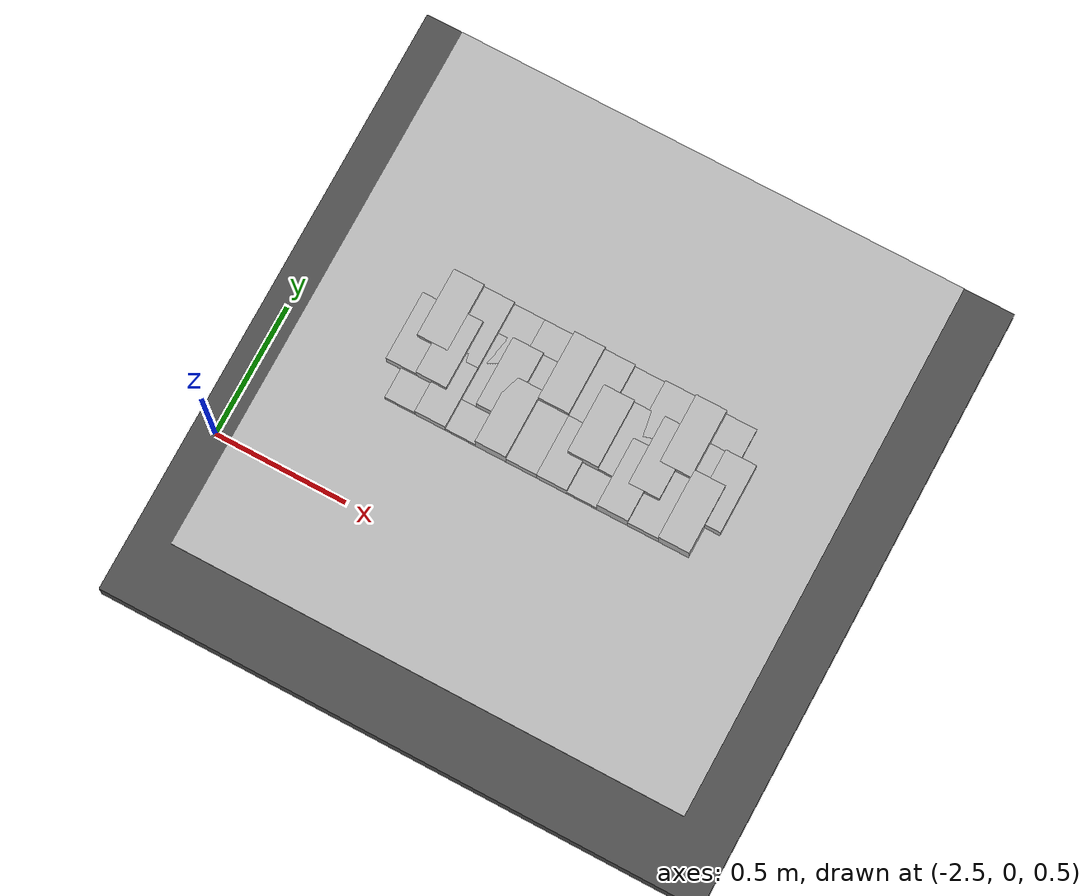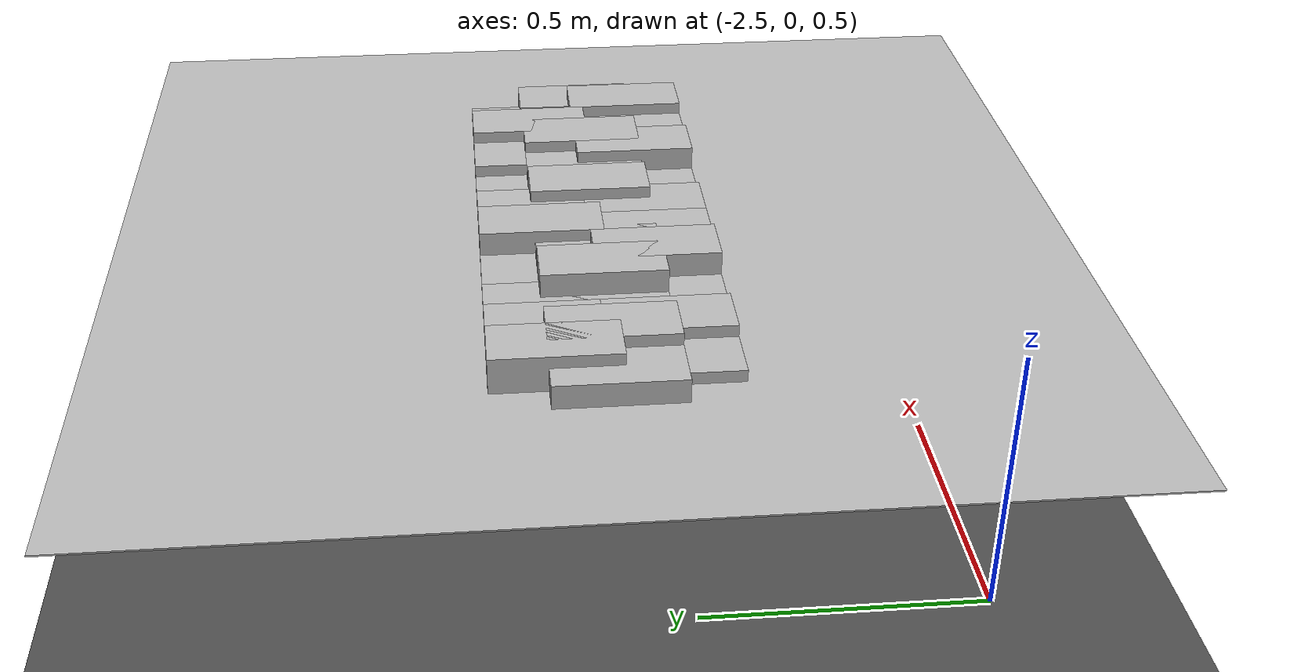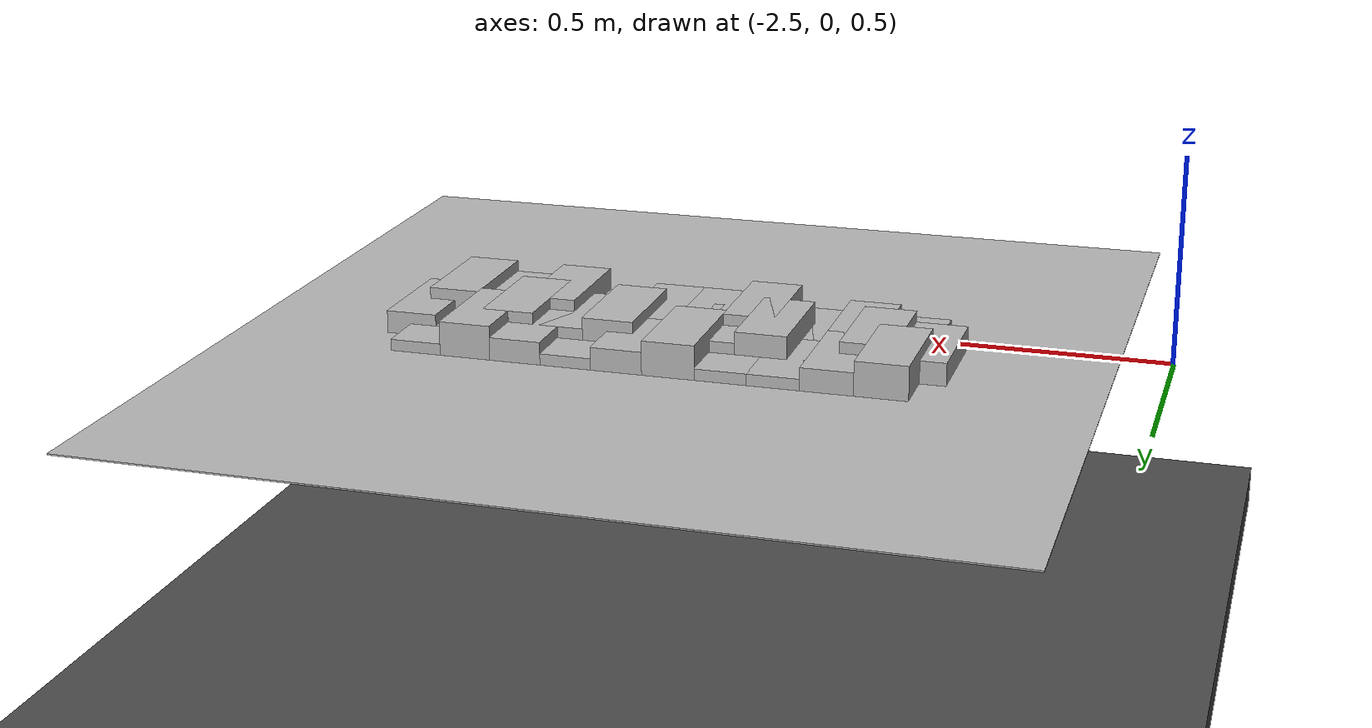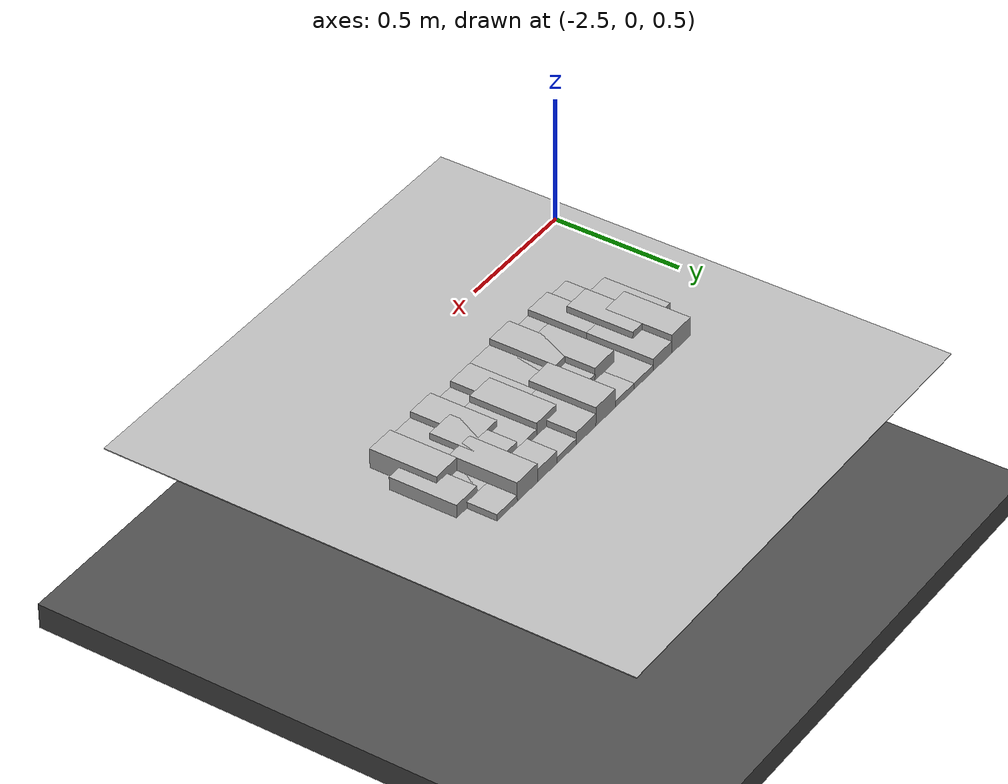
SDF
<sdf version="1.6">
 <world name="default">
  <model name="ground_plane">
   <static>1</static>
   <link name="link">
    <collision name="collision">
     <geometry><plane><normal>0 0 1</normal><size>100 100</size></plane></geometry>
     <surface><friction><ode><mu>100</mu><mu2>50</mu2></ode></friction></surface>
    </collision>
    <visual name="visual">
     <cast_shadows>0</cast_shadows>
     <geometry><plane><normal>0 0 1</normal><size>100 100</size></plane></geometry>
     <material>
      <script><uri>file://media/materials/scripts/gazebo.material</uri><name>Gazebo/Grey</name></script>
     </material>
    </visual>
   </link>
  </model>
  <model name="frc2016_roughterrain_0">
   <link name="link_clone_17">
    <pose>-1.35942 0.562903 -0.073164 0 -0 0</pose>
    <inertial>
     <inertia><ixx>nan</ixx><ixy>0</ixy><ixz>0</ixz><iyy>nan</iyy><iyz>0</iyz><izz>nan</izz></inertia>
     <mass>0</mass>
    </inertial>
    <visual name="row1_block4_sm">
     <pose>0.17145 0.1143 0.09698 0 -0 0</pose>
     <geometry><box><size>0.115452 0.257474 0.0254</size></box></geometry>
     <material><shader type="pixel"/></material>
    </visual>
    <visual name="row1_block3_md">
     <pose>0.28575 0.1143 0.10968 0 -0 0</pose>
     <geometry><box><size>0.115452 0.257474 0.0508</size></box></geometry>
     <material><shader type="pixel"/></material>
    </visual>
    <visual name="platform">
     <pose>0 0 0.08269 0 -0 0</pose>
     <geometry><box><size>1.91826 2.01688 0.003175</size></box></geometry>
     <material><shader type="pixel"/></material>
    </visual>
    <visual name="row1_block1_sm">
     <pose>0.51435 0.1143 0.09698 0 -0 0</pose>
     <geometry><box><size>0.115452 0.257474 0.0254</size></box></geometry>
     <material><shader type="pixel"/></material>
    </visual>
    <visual name="row1_block2_lg">
     <pose>0.40005 0.1143 0.12238 0 -0 0</pose>
     <geometry><box><size>0.115452 0.257474 0.0762</size></box></geometry>
     <material><shader type="pixel"/></material>
    </visual>
    <visual name="row1_block6_lg">
     <pose>-0.05715 0.1143 0.12238 0 -0 0</pose>
     <geometry><box><size>0.115452 0.257474 0.0762</size></box></geometry>
     <material><shader type="pixel"/></material>
    </visual>
    <visual name="row1_block5_md">
     <pose>0.05715 0.1143 0.10968 0 -0 0</pose>
     <geometry><box><size>0.115452 0.257474 0.0508</size></box></geometry>
     <material><shader type="pixel"/></material>
    </visual>
    <visual name="row1_block7_sm">
     <pose>-0.17145 0.1143 0.09698 0 -0 0</pose>
     <geometry><box><size>0.115452 0.257474 0.0254</size></box></geometry>
     <material><shader type="pixel"/></material>
    </visual>
    <visual name="row1_block8_sm">
     <pose>-0.28575 0.1143 0.09698 0 -0 0</pose>
     <geometry><box><size>0.115452 0.257474 0.0254</size></box></geometry>
     <material><shader type="pixel"/></material>
    </visual>
    <visual name="row1_block9_md">
     <pose>-0.40005 0.1143 0.10968 0 -0 0</pose>
     <geometry><box><size>0.115452 0.257474 0.0508</size></box></geometry>
     <material><shader type="pixel"/></material>
    </visual>
    <visual name="row1_block10_lg">
     <pose>-0.51435 0.1143 0.12238 0 -0 0</pose>
     <geometry><box><size>0.115452 0.257474 0.0762</size></box></geometry>
     <material><shader type="pixel"/></material>
    </visual>
    <visual name="row2_block1_md">
     <pose>0.5715 0 0.10968 0 -0 0</pose>
     <geometry><box><size>0.115452 0.257474 0.0508</size></box></geometry>
     <material><shader type="pixel"/></material>
    </visual>
    <visual name="row2_block2_sm">
     <pose>0.4572 0 0.09698 0 -0 0</pose>
     <geometry><box><size>0.115452 0.257474 0.0254</size></box></geometry>
     <material><shader type="pixel"/></material>
    </visual>
    <visual name="row2_block3_lg">
     <pose>0.3429 0 0.12238 0 -0 0</pose>
     <geometry><box><size>0.115452 0.257474 0.0762</size></box></geometry>
     <material><shader type="pixel"/></material>
    </visual>
    <visual name="row2_block4_md">
     <pose>0.2286 0 0.10968 0 -0 0</pose>
     <geometry><box><size>0.115452 0.257474 0.0508</size></box></geometry>
     <material><shader type="pixel"/></material>
    </visual>
    <visual name="row2_block5_lg">
     <pose>0.1143 0 0.12238 0 -0 0</pose>
     <geometry><box><size>0.115452 0.257474 0.0762</size></box></geometry>
     <material><shader type="pixel"/></material>
    </visual>
    <visual name="row2_block6_sm">
     <pose>0 0 0.09698 0 -0 0</pose>
     <geometry><box><size>0.115452 0.257474 0.0254</size></box></geometry>
     <material><shader type="pixel"/></material>
    </visual>
    <visual name="row2_block7_md">
     <pose>-0.1143 0 0.10968 0 -0 0</pose>
     <geometry><box><size>0.115452 0.257474 0.0508</size></box></geometry>
     <material><shader type="pixel"/></material>
    </visual>
    <visual name="row2_block8_lg">
     <pose>-0.2286 0 0.12238 0 -0 0</pose>
     <geometry><box><size>0.115452 0.257474 0.0762</size></box></geometry>
     <material><shader type="pixel"/></material>
    </visual>
    <visual name="row2_block9_sm">
     <pose>-0.3429 0 0.09698 0 -0 0</pose>
     <geometry><box><size>0.115452 0.257474 0.0254</size></box></geometry>
     <material><shader type="pixel"/></material>
    </visual>
    <visual name="row2_block10_lg">
     <pose>-0.4572 0 0.12238 0 -0 0</pose>
     <geometry><box><size>0.115452 0.257474 0.0762</size></box></geometry>
     <material><shader type="pixel"/></material>
    </visual>
    <visual name="row2_block11_md">
     <pose>-0.5715 0 0.10968 0 -0 0</pose>
     <geometry><box><size>0.115452 0.257474 0.0508</size></box></geometry>
     <material><shader type="pixel"/></material>
    </visual>
    <visual name="row3_block2_md">
     <pose>0.40005 -0.1143 0.10968 0 -0 0</pose>
     <geometry><box><size>0.115452 0.257474 0.0508</size></box></geometry>
     <material><shader type="pixel"/></material>
    </visual>
    <visual name="row3_block1_lg">
     <pose>0.51435 -0.1143 0.12238 0 -0 0</pose>
     <geometry><box><size>0.115452 0.257474 0.0762</size></box></geometry>
     <material><shader type="pixel"/></material>
    </visual>
    <visual name="row3_block3_lg">
     <pose>0.28575 -0.1143 0.12238 0 -0 0</pose>
     <geometry><box><size>0.115452 0.257474 0.0762</size></box></geometry>
     <material><shader type="pixel"/></material>
    </visual>
    <visual name="row3_block4_sm">
     <pose>0.17145 -0.1143 0.09698 0 -0 0</pose>
     <geometry><box><size>0.115452 0.257474 0.0254</size></box></geometry>
     <material><shader type="pixel"/></material>
    </visual>
    <visual name="row3_block5_md">
     <pose>0.05715 -0.1143 0.10968 0 -0 0</pose>
     <geometry><box><size>0.115452 0.257474 0.0508</size></box></geometry>
     <material><shader type="pixel"/></material>
    </visual>
    <visual name="row3_block6_md">
     <pose>-0.05715 -0.1143 0.10968 0 -0 0</pose>
     <geometry><box><size>0.115452 0.257474 0.0508</size></box></geometry>
     <material><shader type="pixel"/></material>
    </visual>
    <visual name="row3_block8_sm">
     <pose>-0.28575 -0.1143 0.09698 0 -0 0</pose>
     <geometry><box><size>0.115452 0.257474 0.0254</size></box></geometry>
     <material><shader type="pixel"/></material>
    </visual>
    <visual name="row3_block7_lg">
     <pose>-0.17145 -0.1143 0.12238 0 -0 0</pose>
     <geometry><box><size>0.115452 0.257474 0.0762</size></box></geometry>
     <material><shader type="pixel"/></material>
    </visual>
    <visual name="row3_block9_md">
     <pose>-0.40005 -0.1143 0.10968 0 -0 0</pose>
     <geometry><box><size>0.115452 0.257474 0.0508</size></box></geometry>
     <material><shader type="pixel"/></material>
    </visual>
    <visual name="row3_block10_sm">
     <pose>-0.51435 -0.1143 0.09698 0 -0 0</pose>
     <geometry><box><size>0.115452 0.257474 0.0254</size></box></geometry>
     <material><shader type="pixel"/></material>
    </visual>
    <collision name="row2_block5_lg_0">
     <pose>0.1143 0 0.12238 0 -0 0</pose>
     <geometry><box><size>0.115452 0.257474 0.0762</size></box></geometry>
     <surface>
      <friction>
       <ode><mu>1</mu><mu2>1</mu2><fdir1>0 0 0</fdir1><slip1>0</slip1><slip2>0</slip2></ode>
       <torsional>
        <coefficient>1</coefficient>
        <patch_radius>0</patch_radius>
        <surface_radius>0</surface_radius>
        <use_patch_radius>1</use_patch_radius>
        <ode><slip>0</slip></ode>
       </torsional>
      </friction>
      <bounce><restitution_coefficient>0</restitution_coefficient><threshold>1e+06</threshold></bounce>
      <contact>
       <collide_without_contact>0</collide_without_contact>
       <collide_without_contact_bitmask>1</collide_without_contact_bitmask>
       <collide_bitmask>1</collide_bitmask>
       <ode>
        <soft_cfm>0</soft_cfm>
        <soft_erp>0.2</soft_erp>
        <kp>1e+13</kp>
        <kd>1</kd>
        <max_vel>0.01</max_vel>
        <min_depth>0</min_depth>
       </ode>
       <bullet>
        <split_impulse>1</split_impulse>
        <split_impulse_penetration_threshold>-0.01</split_impulse_penetration_threshold>
        <soft_cfm>0</soft_cfm>
        <soft_erp>0.2</soft_erp>
        <kp>1e+13</kp>
        <kd>1</kd>
       </bullet>
      </contact>
     </surface>
    </collision>
    <collision name="row1_block5_md_0">
     <pose>0.05715 0.1143 0.10968 0 -0 0</pose>
     <geometry><box><size>0.115452 0.257474 0.0508</size></box></geometry>
     <surface>
      <friction>
       <ode><mu>1</mu><mu2>1</mu2><fdir1>0 0 0</fdir1><slip1>0</slip1><slip2>0</slip2></ode>
       <torsional>
        <coefficient>1</coefficient>
        <patch_radius>0</patch_radius>
        <surface_radius>0</surface_radius>
        <use_patch_radius>1</use_patch_radius>
        <ode><slip>0</slip></ode>
       </torsional>
      </friction>
      <bounce><restitution_coefficient>0</restitution_coefficient><threshold>1e+06</threshold></bounce>
      <contact>
       <collide_without_contact>0</collide_without_contact>
       <collide_without_contact_bitmask>1</collide_without_contact_bitmask>
       <collide_bitmask>1</collide_bitmask>
       <ode>
        <soft_cfm>0</soft_cfm>
        <soft_erp>0.2</soft_erp>
        <kp>1e+13</kp>
        <kd>1</kd>
        <max_vel>0.01</max_vel>
        <min_depth>0</min_depth>
       </ode>
       <bullet>
        <split_impulse>1</split_impulse>
        <split_impulse_penetration_threshold>-0.01</split_impulse_penetration_threshold>
        <soft_cfm>0</soft_cfm>
        <soft_erp>0.2</soft_erp>
        <kp>1e+13</kp>
        <kd>1</kd>
       </bullet>
      </contact>
     </surface>
    </collision>
    <collision name="platform_0">
     <pose>0 0 0.08269 0 -0 0</pose>
     <geometry><box><size>1.91826 2.01688 0.003175</size></box></geometry>
     <surface>
      <friction>
       <ode><mu>1</mu><mu2>1</mu2><fdir1>0 0 0</fdir1><slip1>0</slip1><slip2>0</slip2></ode>
       <torsional>
        <coefficient>1</coefficient>
        <patch_radius>0</patch_radius>
        <surface_radius>0</surface_radius>
        <use_patch_radius>1</use_patch_radius>
        <ode><slip>0</slip></ode>
       </torsional>
      </friction>
      <bounce><restitution_coefficient>0</restitution_coefficient><threshold>1e+06</threshold></bounce>
      <contact>
       <collide_without_contact>0</collide_without_contact>
       <collide_without_contact_bitmask>1</collide_without_contact_bitmask>
       <collide_bitmask>1</collide_bitmask>
       <ode>
        <soft_cfm>0</soft_cfm>
        <soft_erp>0.2</soft_erp>
        <kp>1e+13</kp>
        <kd>1</kd>
        <max_vel>0.01</max_vel>
        <min_depth>0</min_depth>
       </ode>
       <bullet>
        <split_impulse>1</split_impulse>
        <split_impulse_penetration_threshold>-0.01</split_impulse_penetration_threshold>
        <soft_cfm>0</soft_cfm>
        <soft_erp>0.2</soft_erp>
        <kp>1e+13</kp>
        <kd>1</kd>
       </bullet>
      </contact>
     </surface>
    </collision>
    <collision name="row1_block1_sm_0">
     <pose>0.51435 0.1143 0.09698 0 -0 0</pose>
     <geometry><box><size>0.115452 0.257474 0.0254</size></box></geometry>
     <surface>
      <friction>
       <ode><mu>1</mu><mu2>1</mu2><fdir1>0 0 0</fdir1><slip1>0</slip1><slip2>0</slip2></ode>
       <torsional>
        <coefficient>1</coefficient>
        <patch_radius>0</patch_radius>
        <surface_radius>0</surface_radius>
        <use_patch_radius>1</use_patch_radius>
        <ode><slip>0</slip></ode>
       </torsional>
      </friction>
      <bounce><restitution_coefficient>0</restitution_coefficient><threshold>1e+06</threshold></bounce>
      <contact>
       <collide_without_contact>0</collide_without_contact>
       <collide_without_contact_bitmask>1</collide_without_contact_bitmask>
       <collide_bitmask>1</collide_bitmask>
       <ode>
        <soft_cfm>0</soft_cfm>
        <soft_erp>0.2</soft_erp>
        <kp>1e+13</kp>
        <kd>1</kd>
        <max_vel>0.01</max_vel>
        <min_depth>0</min_depth>
       </ode>
       <bullet>
        <split_impulse>1</split_impulse>
        <split_impulse_penetration_threshold>-0.01</split_impulse_penetration_threshold>
        <soft_cfm>0</soft_cfm>
        <soft_erp>0.2</soft_erp>
        <kp>1e+13</kp>
        <kd>1</kd>
       </bullet>
      </contact>
     </surface>
    </collision>
    <collision name="row1_block3_md_0">
     <pose>0.28575 0.1143 0.10968 0 -0 0</pose>
     <geometry><box><size>0.115452 0.257474 0.0508</size></box></geometry>
     <surface>
      <friction>
       <ode><mu>1</mu><mu2>1</mu2><fdir1>0 0 0</fdir1><slip1>0</slip1><slip2>0</slip2></ode>
       <torsional>
        <coefficient>1</coefficient>
        <patch_radius>0</patch_radius>
        <surface_radius>0</surface_radius>
        <use_patch_radius>1</use_patch_radius>
        <ode><slip>0</slip></ode>
       </torsional>
      </friction>
      <bounce><restitution_coefficient>0</restitution_coefficient><threshold>1e+06</threshold></bounce>
      <contact>
       <collide_without_contact>0</collide_without_contact>
       <collide_without_contact_bitmask>1</collide_without_contact_bitmask>
       <collide_bitmask>1</collide_bitmask>
       <ode>
        <soft_cfm>0</soft_cfm>
        <soft_erp>0.2</soft_erp>
        <kp>1e+13</kp>
        <kd>1</kd>
        <max_vel>0.01</max_vel>
        <min_depth>0</min_depth>
       </ode>
       <bullet>
        <split_impulse>1</split_impulse>
        <split_impulse_penetration_threshold>-0.01</split_impulse_penetration_threshold>
        <soft_cfm>0</soft_cfm>
        <soft_erp>0.2</soft_erp>
        <kp>1e+13</kp>
        <kd>1</kd>
       </bullet>
      </contact>
     </surface>
    </collision>
    <collision name="row1_block4_sm_0">
     <pose>0.17145 0.1143 0.09698 0 -0 0</pose>
     <geometry><box><size>0.115452 0.257474 0.0254</size></box></geometry>
     <surface>
      <friction>
       <ode><mu>1</mu><mu2>1</mu2><fdir1>0 0 0</fdir1><slip1>0</slip1><slip2>0</slip2></ode>
       <torsional>
        <coefficient>1</coefficient>
        <patch_radius>0</patch_radius>
        <surface_radius>0</surface_radius>
        <use_patch_radius>1</use_patch_radius>
        <ode><slip>0</slip></ode>
       </torsional>
      </friction>
      <bounce><restitution_coefficient>0</restitution_coefficient><threshold>1e+06</threshold></bounce>
      <contact>
       <collide_without_contact>0</collide_without_contact>
       <collide_without_contact_bitmask>1</collide_without_contact_bitmask>
       <collide_bitmask>1</collide_bitmask>
       <ode>
        <soft_cfm>0</soft_cfm>
        <soft_erp>0.2</soft_erp>
        <kp>1e+13</kp>
        <kd>1</kd>
        <max_vel>0.01</max_vel>
        <min_depth>0</min_depth>
       </ode>
       <bullet>
        <split_impulse>1</split_impulse>
        <split_impulse_penetration_threshold>-0.01</split_impulse_penetration_threshold>
        <soft_cfm>0</soft_cfm>
        <soft_erp>0.2</soft_erp>
        <kp>1e+13</kp>
        <kd>1</kd>
       </bullet>
      </contact>
     </surface>
    </collision>
    <collision name="row1_block2_lg_0">
     <pose>0.40005 0.1143 0.12238 0 -0 0</pose>
     <geometry><box><size>0.115452 0.257474 0.0762</size></box></geometry>
     <surface>
      <friction>
       <ode><mu>1</mu><mu2>1</mu2><fdir1>0 0 0</fdir1><slip1>0</slip1><slip2>0</slip2></ode>
       <torsional>
        <coefficient>1</coefficient>
        <patch_radius>0</patch_radius>
        <surface_radius>0</surface_radius>
        <use_patch_radius>1</use_patch_radius>
        <ode><slip>0</slip></ode>
       </torsional>
      </friction>
      <bounce><restitution_coefficient>0</restitution_coefficient><threshold>1e+06</threshold></bounce>
      <contact>
       <collide_without_contact>0</collide_without_contact>
       <collide_without_contact_bitmask>1</collide_without_contact_bitmask>
       <collide_bitmask>1</collide_bitmask>
       <ode>
        <soft_cfm>0</soft_cfm>
        <soft_erp>0.2</soft_erp>
        <kp>1e+13</kp>
        <kd>1</kd>
        <max_vel>0.01</max_vel>
        <min_depth>0</min_depth>
       </ode>
       <bullet>
        <split_impulse>1</split_impulse>
        <split_impulse_penetration_threshold>-0.01</split_impulse_penetration_threshold>
        <soft_cfm>0</soft_cfm>
        <soft_erp>0.2</soft_erp>
        <kp>1e+13</kp>
        <kd>1</kd>
       </bullet>
      </contact>
     </surface>
    </collision>
    <collision name="row1_block6_lg_0">
     <pose>-0.05715 0.1143 0.12238 0 -0 0</pose>
     <geometry><box><size>0.115452 0.257474 0.0762</size></box></geometry>
     <surface>
      <friction>
       <ode><mu>1</mu><mu2>1</mu2><fdir1>0 0 0</fdir1><slip1>0</slip1><slip2>0</slip2></ode>
       <torsional>
        <coefficient>1</coefficient>
        <patch_radius>0</patch_radius>
        <surface_radius>0</surface_radius>
        <use_patch_radius>1</use_patch_radius>
        <ode><slip>0</slip></ode>
       </torsional>
      </friction>
      <bounce><restitution_coefficient>0</restitution_coefficient><threshold>1e+06</threshold></bounce>
      <contact>
       <collide_without_contact>0</collide_without_contact>
       <collide_without_contact_bitmask>1</collide_without_contact_bitmask>
       <collide_bitmask>1</collide_bitmask>
       <ode>
        <soft_cfm>0</soft_cfm>
        <soft_erp>0.2</soft_erp>
        <kp>1e+13</kp>
        <kd>1</kd>
        <max_vel>0.01</max_vel>
        <min_depth>0</min_depth>
       </ode>
       <bullet>
        <split_impulse>1</split_impulse>
        <split_impulse_penetration_threshold>-0.01</split_impulse_penetration_threshold>
        <soft_cfm>0</soft_cfm>
        <soft_erp>0.2</soft_erp>
        <kp>1e+13</kp>
        <kd>1</kd>
       </bullet>
      </contact>
     </surface>
    </collision>
    <collision name="row1_block7_sm_0">
     <pose>-0.17145 0.1143 0.09698 0 -0 0</pose>
     <geometry><box><size>0.115452 0.257474 0.0254</size></box></geometry>
     <surface>
      <friction>
       <ode><mu>1</mu><mu2>1</mu2><fdir1>0 0 0</fdir1><slip1>0</slip1><slip2>0</slip2></ode>
       <torsional>
        <coefficient>1</coefficient>
        <patch_radius>0</patch_radius>
        <surface_radius>0</surface_radius>
        <use_patch_radius>1</use_patch_radius>
        <ode><slip>0</slip></ode>
       </torsional>
      </friction>
      <bounce><restitution_coefficient>0</restitution_coefficient><threshold>1e+06</threshold></bounce>
      <contact>
       <collide_without_contact>0</collide_without_contact>
       <collide_without_contact_bitmask>1</collide_without_contact_bitmask>
       <collide_bitmask>1</collide_bitmask>
       <ode>
        <soft_cfm>0</soft_cfm>
        <soft_erp>0.2</soft_erp>
        <kp>1e+13</kp>
        <kd>1</kd>
        <max_vel>0.01</max_vel>
        <min_depth>0</min_depth>
       </ode>
       <bullet>
        <split_impulse>1</split_impulse>
        <split_impulse_penetration_threshold>-0.01</split_impulse_penetration_threshold>
        <soft_cfm>0</soft_cfm>
        <soft_erp>0.2</soft_erp>
        <kp>1e+13</kp>
        <kd>1</kd>
       </bullet>
      </contact>
     </surface>
    </collision>
    <collision name="row1_block8_sm_0">
     <pose>-0.28575 0.1143 0.09698 0 -0 0</pose>
     <geometry><box><size>0.115452 0.257474 0.0254</size></box></geometry>
     <surface>
      <friction>
       <ode><mu>1</mu><mu2>1</mu2><fdir1>0 0 0</fdir1><slip1>0</slip1><slip2>0</slip2></ode>
       <torsional>
        <coefficient>1</coefficient>
        <patch_radius>0</patch_radius>
        <surface_radius>0</surface_radius>
        <use_patch_radius>1</use_patch_radius>
        <ode><slip>0</slip></ode>
       </torsional>
      </friction>
      <bounce><restitution_coefficient>0</restitution_coefficient><threshold>1e+06</threshold></bounce>
      <contact>
       <collide_without_contact>0</collide_without_contact>
       <collide_without_contact_bitmask>1</collide_without_contact_bitmask>
       <collide_bitmask>1</collide_bitmask>
       <ode>
        <soft_cfm>0</soft_cfm>
        <soft_erp>0.2</soft_erp>
        <kp>1e+13</kp>
        <kd>1</kd>
        <max_vel>0.01</max_vel>
        <min_depth>0</min_depth>
       </ode>
       <bullet>
        <split_impulse>1</split_impulse>
        <split_impulse_penetration_threshold>-0.01</split_impulse_penetration_threshold>
        <soft_cfm>0</soft_cfm>
        <soft_erp>0.2</soft_erp>
        <kp>1e+13</kp>
        <kd>1</kd>
       </bullet>
      </contact>
     </surface>
    </collision>
    <collision name="row1_block10_lg_0">
     <pose>-0.51435 0.1143 0.12238 0 -0 0</pose>
     <geometry><box><size>0.115452 0.257474 0.0762</size></box></geometry>
     <surface>
      <friction>
       <ode><mu>1</mu><mu2>1</mu2><fdir1>0 0 0</fdir1><slip1>0</slip1><slip2>0</slip2></ode>
       <torsional>
        <coefficient>1</coefficient>
        <patch_radius>0</patch_radius>
        <surface_radius>0</surface_radius>
        <use_patch_radius>1</use_patch_radius>
        <ode><slip>0</slip></ode>
       </torsional>
      </friction>
      <bounce><restitution_coefficient>0</restitution_coefficient><threshold>1e+06</threshold></bounce>
      <contact>
       <collide_without_contact>0</collide_without_contact>
       <collide_without_contact_bitmask>1</collide_without_contact_bitmask>
       <collide_bitmask>1</collide_bitmask>
       <ode>
        <soft_cfm>0</soft_cfm>
        <soft_erp>0.2</soft_erp>
        <kp>1e+13</kp>
        <kd>1</kd>
        <max_vel>0.01</max_vel>
        <min_depth>0</min_depth>
       </ode>
       <bullet>
        <split_impulse>1</split_impulse>
        <split_impulse_penetration_threshold>-0.01</split_impulse_penetration_threshold>
        <soft_cfm>0</soft_cfm>
        <soft_erp>0.2</soft_erp>
        <kp>1e+13</kp>
        <kd>1</kd>
       </bullet>
      </contact>
     </surface>
    </collision>
    <collision name="row1_block9_md_0">
     <pose>-0.40005 0.1143 0.10968 0 -0 0</pose>
     <geometry><box><size>0.115452 0.257474 0.0508</size></box></geometry>
     <surface>
      <friction>
       <ode><mu>1</mu><mu2>1</mu2><fdir1>0 0 0</fdir1><slip1>0</slip1><slip2>0</slip2></ode>
       <torsional>
        <coefficient>1</coefficient>
        <patch_radius>0</patch_radius>
        <surface_radius>0</surface_radius>
        <use_patch_radius>1</use_patch_radius>
        <ode><slip>0</slip></ode>
       </torsional>
      </friction>
      <bounce><restitution_coefficient>0</restitution_coefficient><threshold>1e+06</threshold></bounce>
      <contact>
       <collide_without_contact>0</collide_without_contact>
       <collide_without_contact_bitmask>1</collide_without_contact_bitmask>
       <collide_bitmask>1</collide_bitmask>
       <ode>
        <soft_cfm>0</soft_cfm>
        <soft_erp>0.2</soft_erp>
        <kp>1e+13</kp>
        <kd>1</kd>
        <max_vel>0.01</max_vel>
        <min_depth>0</min_depth>
       </ode>
       <bullet>
        <split_impulse>1</split_impulse>
        <split_impulse_penetration_threshold>-0.01</split_impulse_penetration_threshold>
        <soft_cfm>0</soft_cfm>
        <soft_erp>0.2</soft_erp>
        <kp>1e+13</kp>
        <kd>1</kd>
       </bullet>
      </contact>
     </surface>
    </collision>
    <collision name="row2_block2_sm_0">
     <pose>0.4572 0 0.09698 0 -0 0</pose>
     <geometry><box><size>0.115452 0.257474 0.0254</size></box></geometry>
     <surface>
      <friction>
       <ode><mu>1</mu><mu2>1</mu2><fdir1>0 0 0</fdir1><slip1>0</slip1><slip2>0</slip2></ode>
       <torsional>
        <coefficient>1</coefficient>
        <patch_radius>0</patch_radius>
        <surface_radius>0</surface_radius>
        <use_patch_radius>1</use_patch_radius>
        <ode><slip>0</slip></ode>
       </torsional>
      </friction>
      <bounce><restitution_coefficient>0</restitution_coefficient><threshold>1e+06</threshold></bounce>
      <contact>
       <collide_without_contact>0</collide_without_contact>
       <collide_without_contact_bitmask>1</collide_without_contact_bitmask>
       <collide_bitmask>1</collide_bitmask>
       <ode>
        <soft_cfm>0</soft_cfm>
        <soft_erp>0.2</soft_erp>
        <kp>1e+13</kp>
        <kd>1</kd>
        <max_vel>0.01</max_vel>
        <min_depth>0</min_depth>
       </ode>
       <bullet>
        <split_impulse>1</split_impulse>
        <split_impulse_penetration_threshold>-0.01</split_impulse_penetration_threshold>
        <soft_cfm>0</soft_cfm>
        <soft_erp>0.2</soft_erp>
        <kp>1e+13</kp>
        <kd>1</kd>
       </bullet>
      </contact>
     </surface>
    </collision>
    <collision name="row2_block1_md_0">
     <pose>0.5715 0 0.10968 0 -0 0</pose>
     <geometry><box><size>0.115452 0.257474 0.0508</size></box></geometry>
     <surface>
      <friction>
       <ode><mu>1</mu><mu2>1</mu2><fdir1>0 0 0</fdir1><slip1>0</slip1><slip2>0</slip2></ode>
       <torsional>
        <coefficient>1</coefficient>
        <patch_radius>0</patch_radius>
        <surface_radius>0</surface_radius>
        <use_patch_radius>1</use_patch_radius>
        <ode><slip>0</slip></ode>
       </torsional>
      </friction>
      <bounce><restitution_coefficient>0</restitution_coefficient><threshold>1e+06</threshold></bounce>
      <contact>
       <collide_without_contact>0</collide_without_contact>
       <collide_without_contact_bitmask>1</collide_without_contact_bitmask>
       <collide_bitmask>1</collide_bitmask>
       <ode>
        <soft_cfm>0</soft_cfm>
        <soft_erp>0.2</soft_erp>
        <kp>1e+13</kp>
        <kd>1</kd>
        <max_vel>0.01</max_vel>
        <min_depth>0</min_depth>
       </ode>
       <bullet>
        <split_impulse>1</split_impulse>
        <split_impulse_penetration_threshold>-0.01</split_impulse_penetration_threshold>
        <soft_cfm>0</soft_cfm>
        <soft_erp>0.2</soft_erp>
        <kp>1e+13</kp>
        <kd>1</kd>
       </bullet>
      </contact>
     </surface>
    </collision>
    <collision name="row2_block4_md_0">
     <pose>0.2286 0 0.10968 0 -0 0</pose>
     <geometry><box><size>0.115452 0.257474 0.0508</size></box></geometry>
     <surface>
      <friction>
       <ode><mu>1</mu><mu2>1</mu2><fdir1>0 0 0</fdir1><slip1>0</slip1><slip2>0</slip2></ode>
       <torsional>
        <coefficient>1</coefficient>
        <patch_radius>0</patch_radius>
        <surface_radius>0</surface_radius>
        <use_patch_radius>1</use_patch_radius>
        <ode><slip>0</slip></ode>
       </torsional>
      </friction>
      <bounce><restitution_coefficient>0</restitution_coefficient><threshold>1e+06</threshold></bounce>
      <contact>
       <collide_without_contact>0</collide_without_contact>
       <collide_without_contact_bitmask>1</collide_without_contact_bitmask>
       <collide_bitmask>1</collide_bitmask>
       <ode>
        <soft_cfm>0</soft_cfm>
        <soft_erp>0.2</soft_erp>
        <kp>1e+13</kp>
        <kd>1</kd>
        <max_vel>0.01</max_vel>
        <min_depth>0</min_depth>
       </ode>
       <bullet>
        <split_impulse>1</split_impulse>
        <split_impulse_penetration_threshold>-0.01</split_impulse_penetration_threshold>
        <soft_cfm>0</soft_cfm>
        <soft_erp>0.2</soft_erp>
        <kp>1e+13</kp>
        <kd>1</kd>
       </bullet>
      </contact>
     </surface>
    </collision>
    <collision name="row2_block3_lg_0">
     <pose>0.3429 0 0.12238 0 -0 0</pose>
     <geometry><box><size>0.115452 0.257474 0.0762</size></box></geometry>
     <surface>
      <friction>
       <ode><mu>1</mu><mu2>1</mu2><fdir1>0 0 0</fdir1><slip1>0</slip1><slip2>0</slip2></ode>
       <torsional>
        <coefficient>1</coefficient>
        <patch_radius>0</patch_radius>
        <surface_radius>0</surface_radius>
        <use_patch_radius>1</use_patch_radius>
        <ode><slip>0</slip></ode>
       </torsional>
      </friction>
      <bounce><restitution_coefficient>0</restitution_coefficient><threshold>1e+06</threshold></bounce>
      <contact>
       <collide_without_contact>0</collide_without_contact>
       <collide_without_contact_bitmask>1</collide_without_contact_bitmask>
       <collide_bitmask>1</collide_bitmask>
       <ode>
        <soft_cfm>0</soft_cfm>
        <soft_erp>0.2</soft_erp>
        <kp>1e+13</kp>
        <kd>1</kd>
        <max_vel>0.01</max_vel>
        <min_depth>0</min_depth>
       </ode>
       <bullet>
        <split_impulse>1</split_impulse>
        <split_impulse_penetration_threshold>-0.01</split_impulse_penetration_threshold>
        <soft_cfm>0</soft_cfm>
        <soft_erp>0.2</soft_erp>
        <kp>1e+13</kp>
        <kd>1</kd>
       </bullet>
      </contact>
     </surface>
    </collision>
    <collision name="row2_block7_md_0">
     <pose>-0.1143 0 0.10968 0 -0 0</pose>
     <geometry><box><size>0.115452 0.257474 0.0508</size></box></geometry>
     <surface>
      <friction>
       <ode><mu>1</mu><mu2>1</mu2><fdir1>0 0 0</fdir1><slip1>0</slip1><slip2>0</slip2></ode>
       <torsional>
        <coefficient>1</coefficient>
        <patch_radius>0</patch_radius>
        <surface_radius>0</surface_radius>
        <use_patch_radius>1</use_patch_radius>
        <ode><slip>0</slip></ode>
       </torsional>
      </friction>
      <bounce><restitution_coefficient>0</restitution_coefficient><threshold>1e+06</threshold></bounce>
      <contact>
       <collide_without_contact>0</collide_without_contact>
       <collide_without_contact_bitmask>1</collide_without_contact_bitmask>
       <collide_bitmask>1</collide_bitmask>
       <ode>
        <soft_cfm>0</soft_cfm>
        <soft_erp>0.2</soft_erp>
        <kp>1e+13</kp>
        <kd>1</kd>
        <max_vel>0.01</max_vel>
        <min_depth>0</min_depth>
       </ode>
       <bullet>
        <split_impulse>1</split_impulse>
        <split_impulse_penetration_threshold>-0.01</split_impulse_penetration_threshold>
        <soft_cfm>0</soft_cfm>
        <soft_erp>0.2</soft_erp>
        <kp>1e+13</kp>
        <kd>1</kd>
       </bullet>
      </contact>
     </surface>
    </collision>
    <collision name="row2_block6_sm_0">
     <pose>0 0 0.09698 0 -0 0</pose>
     <geometry><box><size>0.115452 0.257474 0.0254</size></box></geometry>
     <surface>
      <friction>
       <ode><mu>1</mu><mu2>1</mu2><fdir1>0 0 0</fdir1><slip1>0</slip1><slip2>0</slip2></ode>
       <torsional>
        <coefficient>1</coefficient>
        <patch_radius>0</patch_radius>
        <surface_radius>0</surface_radius>
        <use_patch_radius>1</use_patch_radius>
        <ode><slip>0</slip></ode>
       </torsional>
      </friction>
      <bounce><restitution_coefficient>0</restitution_coefficient><threshold>1e+06</threshold></bounce>
      <contact>
       <collide_without_contact>0</collide_without_contact>
       <collide_without_contact_bitmask>1</collide_without_contact_bitmask>
       <collide_bitmask>1</collide_bitmask>
       <ode>
        <soft_cfm>0</soft_cfm>
        <soft_erp>0.2</soft_erp>
        <kp>1e+13</kp>
        <kd>1</kd>
        <max_vel>0.01</max_vel>
        <min_depth>0</min_depth>
       </ode>
       <bullet>
        <split_impulse>1</split_impulse>
        <split_impulse_penetration_threshold>-0.01</split_impulse_penetration_threshold>
        <soft_cfm>0</soft_cfm>
        <soft_erp>0.2</soft_erp>
        <kp>1e+13</kp>
        <kd>1</kd>
       </bullet>
      </contact>
     </surface>
    </collision>
    <collision name="row2_block10_lg_0">
     <pose>-0.4572 0 0.12238 0 -0 0</pose>
     <geometry><box><size>0.115452 0.257474 0.0762</size></box></geometry>
     <surface>
      <friction>
       <ode><mu>1</mu><mu2>1</mu2><fdir1>0 0 0</fdir1><slip1>0</slip1><slip2>0</slip2></ode>
       <torsional>
        <coefficient>1</coefficient>
        <patch_radius>0</patch_radius>
        <surface_radius>0</surface_radius>
        <use_patch_radius>1</use_patch_radius>
        <ode><slip>0</slip></ode>
       </torsional>
      </friction>
      <bounce><restitution_coefficient>0</restitution_coefficient><threshold>1e+06</threshold></bounce>
      <contact>
       <collide_without_contact>0</collide_without_contact>
       <collide_without_contact_bitmask>1</collide_without_contact_bitmask>
       <collide_bitmask>1</collide_bitmask>
       <ode>
        <soft_cfm>0</soft_cfm>
        <soft_erp>0.2</soft_erp>
        <kp>1e+13</kp>
        <kd>1</kd>
        <max_vel>0.01</max_vel>
        <min_depth>0</min_depth>
       </ode>
       <bullet>
        <split_impulse>1</split_impulse>
        <split_impulse_penetration_threshold>-0.01</split_impulse_penetration_threshold>
        <soft_cfm>0</soft_cfm>
        <soft_erp>0.2</soft_erp>
        <kp>1e+13</kp>
        <kd>1</kd>
       </bullet>
      </contact>
     </surface>
    </collision>
    <collision name="row2_block8_lg_0">
     <pose>-0.2286 0 0.12238 0 -0 0</pose>
     <geometry><box><size>0.115452 0.257474 0.0762</size></box></geometry>
     <surface>
      <friction>
       <ode><mu>1</mu><mu2>1</mu2><fdir1>0 0 0</fdir1><slip1>0</slip1><slip2>0</slip2></ode>
       <torsional>
        <coefficient>1</coefficient>
        <patch_radius>0</patch_radius>
        <surface_radius>0</surface_radius>
        <use_patch_radius>1</use_patch_radius>
        <ode><slip>0</slip></ode>
       </torsional>
      </friction>
      <bounce><restitution_coefficient>0</restitution_coefficient><threshold>1e+06</threshold></bounce>
      <contact>
       <collide_without_contact>0</collide_without_contact>
       <collide_without_contact_bitmask>1</collide_without_contact_bitmask>
       <collide_bitmask>1</collide_bitmask>
       <ode>
        <soft_cfm>0</soft_cfm>
        <soft_erp>0.2</soft_erp>
        <kp>1e+13</kp>
        <kd>1</kd>
        <max_vel>0.01</max_vel>
        <min_depth>0</min_depth>
       </ode>
       <bullet>
        <split_impulse>1</split_impulse>
        <split_impulse_penetration_threshold>-0.01</split_impulse_penetration_threshold>
        <soft_cfm>0</soft_cfm>
        <soft_erp>0.2</soft_erp>
        <kp>1e+13</kp>
        <kd>1</kd>
       </bullet>
      </contact>
     </surface>
    </collision>
    <collision name="row2_block9_sm_0">
     <pose>-0.3429 0 0.09698 0 -0 0</pose>
     <geometry><box><size>0.115452 0.257474 0.0254</size></box></geometry>
     <surface>
      <friction>
       <ode><mu>1</mu><mu2>1</mu2><fdir1>0 0 0</fdir1><slip1>0</slip1><slip2>0</slip2></ode>
       <torsional>
        <coefficient>1</coefficient>
        <patch_radius>0</patch_radius>
        <surface_radius>0</surface_radius>
        <use_patch_radius>1</use_patch_radius>
        <ode><slip>0</slip></ode>
       </torsional>
      </friction>
      <bounce><restitution_coefficient>0</restitution_coefficient><threshold>1e+06</threshold></bounce>
      <contact>
       <collide_without_contact>0</collide_without_contact>
       <collide_without_contact_bitmask>1</collide_without_contact_bitmask>
       <collide_bitmask>1</collide_bitmask>
       <ode>
        <soft_cfm>0</soft_cfm>
        <soft_erp>0.2</soft_erp>
        <kp>1e+13</kp>
        <kd>1</kd>
        <max_vel>0.01</max_vel>
        <min_depth>0</min_depth>
       </ode>
       <bullet>
        <split_impulse>1</split_impulse>
        <split_impulse_penetration_threshold>-0.01</split_impulse_penetration_threshold>
        <soft_cfm>0</soft_cfm>
        <soft_erp>0.2</soft_erp>
        <kp>1e+13</kp>
        <kd>1</kd>
       </bullet>
      </contact>
     </surface>
    </collision>
    <collision name="row2_block11_md_0">
     <pose>-0.5715 0 0.10968 0 -0 0</pose>
     <geometry><box><size>0.115452 0.257474 0.0508</size></box></geometry>
     <surface>
      <friction>
       <ode><mu>1</mu><mu2>1</mu2><fdir1>0 0 0</fdir1><slip1>0</slip1><slip2>0</slip2></ode>
       <torsional>
        <coefficient>1</coefficient>
        <patch_radius>0</patch_radius>
        <surface_radius>0</surface_radius>
        <use_patch_radius>1</use_patch_radius>
        <ode><slip>0</slip></ode>
       </torsional>
      </friction>
      <bounce><restitution_coefficient>0</restitution_coefficient><threshold>1e+06</threshold></bounce>
      <contact>
       <collide_without_contact>0</collide_without_contact>
       <collide_without_contact_bitmask>1</collide_without_contact_bitmask>
       <collide_bitmask>1</collide_bitmask>
       <ode>
        <soft_cfm>0</soft_cfm>
        <soft_erp>0.2</soft_erp>
        <kp>1e+13</kp>
        <kd>1</kd>
        <max_vel>0.01</max_vel>
        <min_depth>0</min_depth>
       </ode>
       <bullet>
        <split_impulse>1</split_impulse>
        <split_impulse_penetration_threshold>-0.01</split_impulse_penetration_threshold>
        <soft_cfm>0</soft_cfm>
        <soft_erp>0.2</soft_erp>
        <kp>1e+13</kp>
        <kd>1</kd>
       </bullet>
      </contact>
     </surface>
    </collision>
    <collision name="row3_block2_md_0">
     <pose>0.40005 -0.1143 0.10968 0 -0 0</pose>
     <geometry><box><size>0.115452 0.257474 0.0508</size></box></geometry>
     <surface>
      <friction>
       <ode><mu>1</mu><mu2>1</mu2><fdir1>0 0 0</fdir1><slip1>0</slip1><slip2>0</slip2></ode>
       <torsional>
        <coefficient>1</coefficient>
        <patch_radius>0</patch_radius>
        <surface_radius>0</surface_radius>
        <use_patch_radius>1</use_patch_radius>
        <ode><slip>0</slip></ode>
       </torsional>
      </friction>
      <bounce><restitution_coefficient>0</restitution_coefficient><threshold>1e+06</threshold></bounce>
      <contact>
       <collide_without_contact>0</collide_without_contact>
       <collide_without_contact_bitmask>1</collide_without_contact_bitmask>
       <collide_bitmask>1</collide_bitmask>
       <ode>
        <soft_cfm>0</soft_cfm>
        <soft_erp>0.2</soft_erp>
        <kp>1e+13</kp>
        <kd>1</kd>
        <max_vel>0.01</max_vel>
        <min_depth>0</min_depth>
       </ode>
       <bullet>
        <split_impulse>1</split_impulse>
        <split_impulse_penetration_threshold>-0.01</split_impulse_penetration_threshold>
        <soft_cfm>0</soft_cfm>
        <soft_erp>0.2</soft_erp>
        <kp>1e+13</kp>
        <kd>1</kd>
       </bullet>
      </contact>
     </surface>
    </collision>
    <collision name="row3_block1_lg_0">
     <pose>0.51435 -0.1143 0.12238 0 -0 0</pose>
     <geometry><box><size>0.115452 0.257474 0.0762</size></box></geometry>
     <surface>
      <friction>
       <ode><mu>1</mu><mu2>1</mu2><fdir1>0 0 0</fdir1><slip1>0</slip1><slip2>0</slip2></ode>
       <torsional>
        <coefficient>1</coefficient>
        <patch_radius>0</patch_radius>
        <surface_radius>0</surface_radius>
        <use_patch_radius>1</use_patch_radius>
        <ode><slip>0</slip></ode>
       </torsional>
      </friction>
      <bounce><restitution_coefficient>0</restitution_coefficient><threshold>1e+06</threshold></bounce>
      <contact>
       <collide_without_contact>0</collide_without_contact>
       <collide_without_contact_bitmask>1</collide_without_contact_bitmask>
       <collide_bitmask>1</collide_bitmask>
       <ode>
        <soft_cfm>0</soft_cfm>
        <soft_erp>0.2</soft_erp>
        <kp>1e+13</kp>
        <kd>1</kd>
        <max_vel>0.01</max_vel>
        <min_depth>0</min_depth>
       </ode>
       <bullet>
        <split_impulse>1</split_impulse>
        <split_impulse_penetration_threshold>-0.01</split_impulse_penetration_threshold>
        <soft_cfm>0</soft_cfm>
        <soft_erp>0.2</soft_erp>
        <kp>1e+13</kp>
        <kd>1</kd>
       </bullet>
      </contact>
     </surface>
    </collision>
    <collision name="row3_block4_sm_0">
     <pose>0.17145 -0.1143 0.09698 0 -0 0</pose>
     <geometry><box><size>0.115452 0.257474 0.0254</size></box></geometry>
     <surface>
      <friction>
       <ode><mu>1</mu><mu2>1</mu2><fdir1>0 0 0</fdir1><slip1>0</slip1><slip2>0</slip2></ode>
       <torsional>
        <coefficient>1</coefficient>
        <patch_radius>0</patch_radius>
        <surface_radius>0</surface_radius>
        <use_patch_radius>1</use_patch_radius>
        <ode><slip>0</slip></ode>
       </torsional>
      </friction>
      <bounce><restitution_coefficient>0</restitution_coefficient><threshold>1e+06</threshold></bounce>
      <contact>
       <collide_without_contact>0</collide_without_contact>
       <collide_without_contact_bitmask>1</collide_without_contact_bitmask>
       <collide_bitmask>1</collide_bitmask>
       <ode>
        <soft_cfm>0</soft_cfm>
        <soft_erp>0.2</soft_erp>
        <kp>1e+13</kp>
        <kd>1</kd>
        <max_vel>0.01</max_vel>
        <min_depth>0</min_depth>
       </ode>
       <bullet>
        <split_impulse>1</split_impulse>
        <split_impulse_penetration_threshold>-0.01</split_impulse_penetration_threshold>
        <soft_cfm>0</soft_cfm>
        <soft_erp>0.2</soft_erp>
        <kp>1e+13</kp>
        <kd>1</kd>
       </bullet>
      </contact>
     </surface>
    </collision>
    <collision name="row3_block3_lg_0">
     <pose>0.28575 -0.1143 0.12238 0 -0 0</pose>
     <geometry><box><size>0.115452 0.257474 0.0762</size></box></geometry>
     <surface>
      <friction>
       <ode><mu>1</mu><mu2>1</mu2><fdir1>0 0 0</fdir1><slip1>0</slip1><slip2>0</slip2></ode>
       <torsional>
        <coefficient>1</coefficient>
        <patch_radius>0</patch_radius>
        <surface_radius>0</surface_radius>
        <use_patch_radius>1</use_patch_radius>
        <ode><slip>0</slip></ode>
       </torsional>
      </friction>
      <bounce><restitution_coefficient>0</restitution_coefficient><threshold>1e+06</threshold></bounce>
      <contact>
       <collide_without_contact>0</collide_without_contact>
       <collide_without_contact_bitmask>1</collide_without_contact_bitmask>
       <collide_bitmask>1</collide_bitmask>
       <ode>
        <soft_cfm>0</soft_cfm>
        <soft_erp>0.2</soft_erp>
        <kp>1e+13</kp>
        <kd>1</kd>
        <max_vel>0.01</max_vel>
        <min_depth>0</min_depth>
       </ode>
       <bullet>
        <split_impulse>1</split_impulse>
        <split_impulse_penetration_threshold>-0.01</split_impulse_penetration_threshold>
        <soft_cfm>0</soft_cfm>
        <soft_erp>0.2</soft_erp>
        <kp>1e+13</kp>
        <kd>1</kd>
       </bullet>
      </contact>
     </surface>
    </collision>
    <collision name="row3_block5_md_0">
     <pose>0.05715 -0.1143 0.10968 0 -0 0</pose>
     <geometry><box><size>0.115452 0.257474 0.0508</size></box></geometry>
     <surface>
      <friction>
       <ode><mu>1</mu><mu2>1</mu2><fdir1>0 0 0</fdir1><slip1>0</slip1><slip2>0</slip2></ode>
       <torsional>
        <coefficient>1</coefficient>
        <patch_radius>0</patch_radius>
        <surface_radius>0</surface_radius>
        <use_patch_radius>1</use_patch_radius>
        <ode><slip>0</slip></ode>
       </torsional>
      </friction>
      <bounce><restitution_coefficient>0</restitution_coefficient><threshold>1e+06</threshold></bounce>
      <contact>
       <collide_without_contact>0</collide_without_contact>
       <collide_without_contact_bitmask>1</collide_without_contact_bitmask>
       <collide_bitmask>1</collide_bitmask>
       <ode>
        <soft_cfm>0</soft_cfm>
        <soft_erp>0.2</soft_erp>
        <kp>1e+13</kp>
        <kd>1</kd>
        <max_vel>0.01</max_vel>
        <min_depth>0</min_depth>
       </ode>
       <bullet>
        <split_impulse>1</split_impulse>
        <split_impulse_penetration_threshold>-0.01</split_impulse_penetration_threshold>
        <soft_cfm>0</soft_cfm>
        <soft_erp>0.2</soft_erp>
        <kp>1e+13</kp>
        <kd>1</kd>
       </bullet>
      </contact>
     </surface>
    </collision>
    <collision name="row3_block6_md_0">
     <pose>-0.05715 -0.1143 0.10968 0 -0 0</pose>
     <geometry><box><size>0.115452 0.257474 0.0508</size></box></geometry>
     <surface>
      <friction>
       <ode><mu>1</mu><mu2>1</mu2><fdir1>0 0 0</fdir1><slip1>0</slip1><slip2>0</slip2></ode>
       <torsional>
        <coefficient>1</coefficient>
        <patch_radius>0</patch_radius>
        <surface_radius>0</surface_radius>
        <use_patch_radius>1</use_patch_radius>
        <ode><slip>0</slip></ode>
       </torsional>
      </friction>
      <bounce><restitution_coefficient>0</restitution_coefficient><threshold>1e+06</threshold></bounce>
      <contact>
       <collide_without_contact>0</collide_without_contact>
       <collide_without_contact_bitmask>1</collide_without_contact_bitmask>
       <collide_bitmask>1</collide_bitmask>
       <ode>
        <soft_cfm>0</soft_cfm>
        <soft_erp>0.2</soft_erp>
        <kp>1e+13</kp>
        <kd>1</kd>
        <max_vel>0.01</max_vel>
        <min_depth>0</min_depth>
       </ode>
       <bullet>
        <split_impulse>1</split_impulse>
        <split_impulse_penetration_threshold>-0.01</split_impulse_penetration_threshold>
        <soft_cfm>0</soft_cfm>
        <soft_erp>0.2</soft_erp>
        <kp>1e+13</kp>
        <kd>1</kd>
       </bullet>
      </contact>
     </surface>
    </collision>
    <collision name="row3_block7_lg_0">
     <pose>-0.17145 -0.1143 0.12238 0 -0 0</pose>
     <geometry><box><size>0.115452 0.257474 0.0762</size></box></geometry>
     <surface>
      <friction>
       <ode><mu>1</mu><mu2>1</mu2><fdir1>0 0 0</fdir1><slip1>0</slip1><slip2>0</slip2></ode>
       <torsional>
        <coefficient>1</coefficient>
        <patch_radius>0</patch_radius>
        <surface_radius>0</surface_radius>
        <use_patch_radius>1</use_patch_radius>
        <ode><slip>0</slip></ode>
       </torsional>
      </friction>
      <bounce><restitution_coefficient>0</restitution_coefficient><threshold>1e+06</threshold></bounce>
      <contact>
       <collide_without_contact>0</collide_without_contact>
       <collide_without_contact_bitmask>1</collide_without_contact_bitmask>
       <collide_bitmask>1</collide_bitmask>
       <ode>
        <soft_cfm>0</soft_cfm>
        <soft_erp>0.2</soft_erp>
        <kp>1e+13</kp>
        <kd>1</kd>
        <max_vel>0.01</max_vel>
        <min_depth>0</min_depth>
       </ode>
       <bullet>
        <split_impulse>1</split_impulse>
        <split_impulse_penetration_threshold>-0.01</split_impulse_penetration_threshold>
        <soft_cfm>0</soft_cfm>
        <soft_erp>0.2</soft_erp>
        <kp>1e+13</kp>
        <kd>1</kd>
       </bullet>
      </contact>
     </surface>
    </collision>
    <collision name="row3_block8_sm_0">
     <pose>-0.28575 -0.1143 0.09698 0 -0 0</pose>
     <geometry><box><size>0.115452 0.257474 0.0254</size></box></geometry>
     <surface>
      <friction>
       <ode><mu>1</mu><mu2>1</mu2><fdir1>0 0 0</fdir1><slip1>0</slip1><slip2>0</slip2></ode>
       <torsional>
        <coefficient>1</coefficient>
        <patch_radius>0</patch_radius>
        <surface_radius>0</surface_radius>
        <use_patch_radius>1</use_patch_radius>
        <ode><slip>0</slip></ode>
       </torsional>
      </friction>
      <bounce><restitution_coefficient>0</restitution_coefficient><threshold>1e+06</threshold></bounce>
      <contact>
       <collide_without_contact>0</collide_without_contact>
       <collide_without_contact_bitmask>1</collide_without_contact_bitmask>
       <collide_bitmask>1</collide_bitmask>
       <ode>
        <soft_cfm>0</soft_cfm>
        <soft_erp>0.2</soft_erp>
        <kp>1e+13</kp>
        <kd>1</kd>
        <max_vel>0.01</max_vel>
        <min_depth>0</min_depth>
       </ode>
       <bullet>
        <split_impulse>1</split_impulse>
        <split_impulse_penetration_threshold>-0.01</split_impulse_penetration_threshold>
        <soft_cfm>0</soft_cfm>
        <soft_erp>0.2</soft_erp>
        <kp>1e+13</kp>
        <kd>1</kd>
       </bullet>
      </contact>
     </surface>
    </collision>
    <collision name="row3_block10_sm_0">
     <pose>-0.51435 -0.1143 0.09698 0 -0 0</pose>
     <geometry><box><size>0.115452 0.257474 0.0254</size></box></geometry>
     <surface>
      <friction>
       <ode><mu>1</mu><mu2>1</mu2><fdir1>0 0 0</fdir1><slip1>0</slip1><slip2>0</slip2></ode>
       <torsional>
        <coefficient>1</coefficient>
        <patch_radius>0</patch_radius>
        <surface_radius>0</surface_radius>
        <use_patch_radius>1</use_patch_radius>
        <ode><slip>0</slip></ode>
       </torsional>
      </friction>
      <bounce><restitution_coefficient>0</restitution_coefficient><threshold>1e+06</threshold></bounce>
      <contact>
       <collide_without_contact>0</collide_without_contact>
       <collide_without_contact_bitmask>1</collide_without_contact_bitmask>
       <collide_bitmask>1</collide_bitmask>
       <ode>
        <soft_cfm>0</soft_cfm>
        <soft_erp>0.2</soft_erp>
        <kp>1e+13</kp>
        <kd>1</kd>
        <max_vel>0.01</max_vel>
        <min_depth>0</min_depth>
       </ode>
       <bullet>
        <split_impulse>1</split_impulse>
        <split_impulse_penetration_threshold>-0.01</split_impulse_penetration_threshold>
        <soft_cfm>0</soft_cfm>
        <soft_erp>0.2</soft_erp>
        <kp>1e+13</kp>
        <kd>1</kd>
       </bullet>
      </contact>
     </surface>
    </collision>
    <collision name="row3_block9_md_0">
     <pose>-0.40005 -0.1143 0.10968 0 -0 0</pose>
     <geometry><box><size>0.115452 0.257474 0.0508</size></box></geometry>
     <surface>
      <friction>
       <ode><mu>1</mu><mu2>1</mu2><fdir1>0 0 0</fdir1><slip1>0</slip1><slip2>0</slip2></ode>
       <torsional>
        <coefficient>1</coefficient>
        <patch_radius>0</patch_radius>
        <surface_radius>0</surface_radius>
        <use_patch_radius>1</use_patch_radius>
        <ode><slip>0</slip></ode>
       </torsional>
      </friction>
      <bounce><restitution_coefficient>0</restitution_coefficient><threshold>1e+06</threshold></bounce>
      <contact>
       <collide_without_contact>0</collide_without_contact>
       <collide_without_contact_bitmask>1</collide_without_contact_bitmask>
       <collide_bitmask>1</collide_bitmask>
       <ode>
        <soft_cfm>0</soft_cfm>
        <soft_erp>0.2</soft_erp>
        <kp>1e+13</kp>
        <kd>1</kd>
        <max_vel>0.01</max_vel>
        <min_depth>0</min_depth>
       </ode>
       <bullet>
        <split_impulse>1</split_impulse>
        <split_impulse_penetration_threshold>-0.01</split_impulse_penetration_threshold>
        <soft_cfm>0</soft_cfm>
        <soft_erp>0.2</soft_erp>
        <kp>1e+13</kp>
        <kd>1</kd>
       </bullet>
      </contact>
     </surface>
    </collision>
   </link>
   <static>1</static>
   <pose>-0.10114 0.027351 0.636987 0 -0 0</pose>
  </model>
  <model name="asphalt_plane">
   <static>1</static>
   <link name="link">
    <collision name="collision"><geometry><box><size>20 20 0.1</size></box></geometry></collision>
    <visual name="visual">
     <cast_shadows>0</cast_shadows>
     <geometry><box><size>20 20 0.1</size></box></geometry>
     <material>
      <script>
       <uri>model://asphalt_plane/materials/scripts</uri>
       <uri>model://asphalt_plane/materials/textures</uri>
       <name>vrc/asphalt</name>
      </script>
     </material>
    </visual>
   </link>
   <pose>0.537328 0.29075 -0.013118 0 -0 0</pose>
  </model>
 </world>
</sdf>
